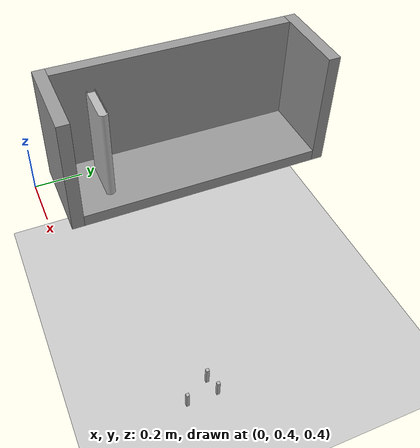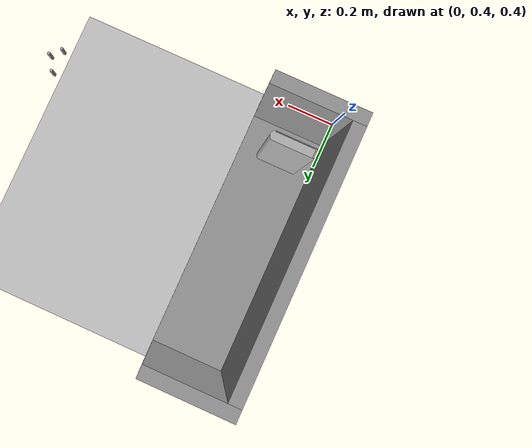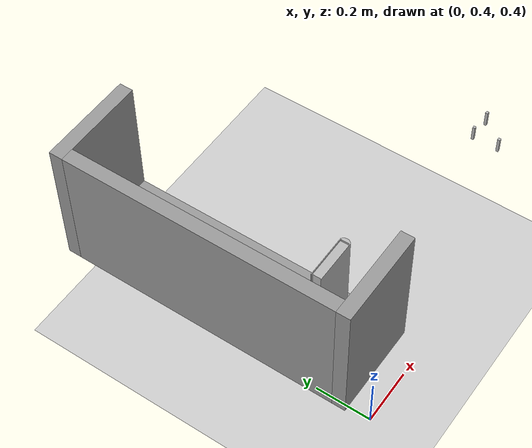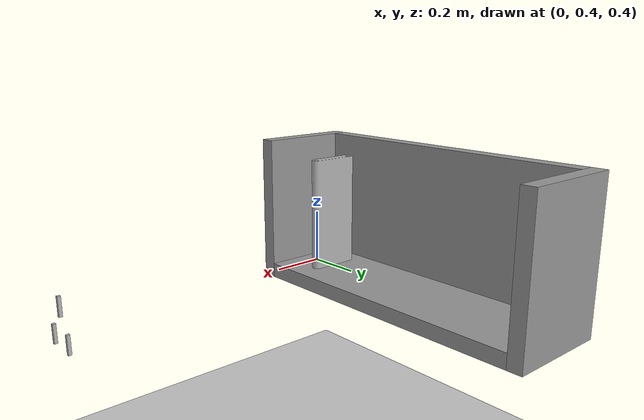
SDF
<?xml version='1.0'?>
<sdf version="1.6">
    <world name="big_bowl_spatula_v">

        <include>
            <uri>model://sun</uri>
        </include>

        <include>
            <uri>model://ground_plane</uri>
        </include>

        <include>
            <uri>model://bookshelf_</uri>
            <pose>0.000000 0.000000 0.000000 0.000000 0.0000000 0.000001</pose>
        </include>

        <include>
            <uri>model://book</uri>
            <name>book_target</name>
            <pose>0.150000 0.661000 0.475000 0.000000 0.000000 1.57080</pose>

            <plugin name="target_tf_broadcaster" filename="libtf_broadcaster_plugin.so">
              <linkName>link</linkName>
              <frameName>book_object_frame</frameName>
            </plugin>
        </include>

        <!-- Left Gripper -->
        <include>
            <uri>model://finger</uri>
            <name>left_ee</name>
            <pose>1.150000 0.661000 0.575000 0.000000 0.000000 1.57080</pose>

            <plugin name="l_force_controller" filename="libvelocity_controller_plugin.so">
              <linkName>link</linkName>
              <topicName>set_l_ee_twist</topicName>
              <gains>
                <linear>
                  <P>100.0</P>
                  <I>0.0</I>
                  <D>25.0</D>
                </linear>
                <angular>
                  <P>100.0</P>
                  <I>0.0</I>
                  <D>25.0</D>
                </angular>
              </gains>
            </plugin>

            <plugin name="l_tf_broadcaster" filename="libtf_broadcaster_plugin.so">
              <linkName>link</linkName>
              <frameName>l_gripper_tool_frame</frameName>
            </plugin>
        </include>

        <!-- Right Gripper -->
        <include>
            <uri>model://finger</uri>
            <name>right_ee</name>
            <pose>1.150000 0.600000 0.475000 0.000000 0.000000 1.57080</pose>

            <plugin name="r_force_controller" filename="libvelocity_controller_plugin.so">
              <linkName>link</linkName>
              <topicName>set_r_ee_twist</topicName>
              <gains>
                <linear>
                  <P>100.0</P>
                  <I>0.0</I>
                  <D>25.0</D>
                </linear>
                <angular>
                  <P>100.0</P>
                  <I>0.0</I>
                  <D>25.0</D>
                </angular>
              </gains>
            </plugin>

            <plugin name="r_tf_broadcaster" filename="libtf_broadcaster_plugin.so">
              <linkName>link</linkName>
              <frameName>r_gripper_tool_frame</frameName>
            </plugin>
        </include>

        <include>
            <uri>model://finger</uri>
            <name>right_ee_2</name>
            <pose>1.150000 0.7000000 0.475000 0.000000 0.000000 1.57080</pose>

            <plugin name="r_2_force_controller" filename="libvelocity_controller_plugin.so">
              <linkName>link</linkName>
              <topicName>set_r_ee_2_twist</topicName>
              <gains>
                <linear>
                  <P>100.0</P>
                  <I>0.0</I>
                  <D>25.0</D>
                </linear>
                <angular>
                  <P>100.0</P>
                  <I>0.0</I>
                  <D>25.0</D>
                </angular>
              </gains>
            </plugin>

            <plugin name="r_2_tf_broadcaster" filename="libtf_broadcaster_plugin.so">
              <linkName>link</linkName>
              <frameName>r_2_gripper_tool_frame</frameName>
            </plugin>
        </include>

        <plugin name="feature_visualization_plugin" filename="libgiskard_visualization_plugin.so"></plugin>

        <gui>
            <camera name='user_camera'>
                <pose>1.770789 1.775709 1.500612 0 0.375643 -2.675000</pose>
                <view_controller>orbit</view_controller>
            </camera>
        </gui>

    </world>
</sdf>

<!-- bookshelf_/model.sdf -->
<sdf version='1.6'>
  <model name='bookshelf_'>
    <model name='shelf'>
      <link name='link_0'>
        <pose frame=''>-0.007971 1.02332 0.68125 0 -0 0</pose>
        <inertial>
          <mass>1</mass>
          <inertia>
            <ixx>0.166667</ixx>
            <ixy>0</ixy>
            <ixz>0</ixz>
            <iyy>0.166667</iyy>
            <iyz>0</iyz>
            <izz>0.166667</izz>
          </inertia>
          <pose frame=''>0 0 0 0 -0 0</pose>
        </inertial>
        <gravity>1</gravity>
        <self_collide>0</self_collide>
        <kinematic>0</kinematic>
        <visual name='visual'>
          <pose frame=''>0 0 0 0 -0 0</pose>
          <geometry>
            <box>
              <size>0.05 1 0.5</size>
            </box>
          </geometry>
          <material>
            <lighting>1</lighting>
            <script>
              <uri>file://media/materials/scripts/gazebo.material</uri>
              <name>Gazebo/Grey</name>
            </script>
            <ambient>0.3 0.3 0.3 1</ambient>
            <diffuse>0.7 0.7 0.7 1</diffuse>
            <specular>0.01 0.01 0.01 1</specular>
            <emissive>0 0 0 1</emissive>
            <shader type='vertex'>
              <normal_map>__default__</normal_map>
            </shader>
          </material>
          <transparency>0</transparency>
          <cast_shadows>1</cast_shadows>
        </visual>
        <collision name='collision'>
          <laser_retro>0</laser_retro>
          <max_contacts>10</max_contacts>
          <pose frame=''>0 0 0 0 -0 0</pose>
          <geometry>
            <box>
              <size>0.05 1 0.5</size>
            </box>
          </geometry>
          <surface>
            <friction>
              <ode>
                <mu>1</mu>
                <mu2>1</mu2>
                <fdir1>0 0 0</fdir1>
                <slip1>0</slip1>
                <slip2>0</slip2>
              </ode>
              <torsional>
                <coefficient>1</coefficient>
                <patch_radius>0</patch_radius>
                <surface_radius>0</surface_radius>
                <use_patch_radius>1</use_patch_radius>
                <ode>
                  <slip>0</slip>
                </ode>
              </torsional>
            </friction>
            <bounce>
              <restitution_coefficient>0</restitution_coefficient>
              <threshold>1e+06</threshold>
            </bounce>
            <contact>
              <collide_without_contact>0</collide_without_contact>
              <collide_without_contact_bitmask>1</collide_without_contact_bitmask>
              <collide_bitmask>1</collide_bitmask>
              <ode>
                <soft_cfm>0</soft_cfm>
                <soft_erp>0.2</soft_erp>
                <kp>1e+13</kp>
                <kd>1</kd>
                <max_vel>0.01</max_vel>
                <min_depth>0</min_depth>
              </ode>
              <bullet>
                <split_impulse>1</split_impulse>
                <split_impulse_penetration_threshold>-0.01</split_impulse_penetration_threshold>
                <soft_cfm>0</soft_cfm>
                <soft_erp>0.2</soft_erp>
                <kp>1e+13</kp>
                <kd>1</kd>
              </bullet>
            </contact>
          </surface>
        </collision>
      </link>
      <link name='link_0_clone'>
        <pose frame=''>0.167029 1.02332 0.45625 0 -0 0</pose>
        <inertial>
          <mass>1</mass>
          <inertia>
            <ixx>0.166667</ixx>
            <ixy>0</ixy>
            <ixz>0</ixz>
            <iyy>0.166667</iyy>
            <iyz>0</iyz>
            <izz>0.166667</izz>
          </inertia>
          <pose frame=''>0 0 0 0 -0 0</pose>
        </inertial>
        <self_collide>0</self_collide>
        <kinematic>0</kinematic>
        <gravity>1</gravity>
        <visual name='visual'>
          <pose frame=''>0 0 0 0 -0 0</pose>
          <geometry>
            <box>
              <size>0.3 1 0.05</size>
            </box>
          </geometry>
          <material>
            <lighting>1</lighting>
            <script>
              <uri>file://media/materials/scripts/gazebo.material</uri>
              <name>Gazebo/Grey</name>
            </script>
            <ambient>0.3 0.3 0.3 1</ambient>
            <diffuse>0.7 0.7 0.7 1</diffuse>
            <specular>0.01 0.01 0.01 1</specular>
            <emissive>0 0 0 1</emissive>
            <shader type='vertex'>
              <normal_map>__default__</normal_map>
            </shader>
          </material>
          <transparency>0</transparency>
          <cast_shadows>1</cast_shadows>
        </visual>
        <collision name='collision'>
          <laser_retro>0</laser_retro>
          <max_contacts>10</max_contacts>
          <pose frame=''>0 0 0 0 -0 0</pose>
          <geometry>
            <box>
              <size>0.3 1 0.05</size>
            </box>
          </geometry>
          <surface>
            <friction>
              <ode>
                <mu>1</mu>
                <mu2>1</mu2>
                <fdir1>0 0 0</fdir1>
                <slip1>0</slip1>
                <slip2>0</slip2>
              </ode>
              <torsional>
                <coefficient>1</coefficient>
                <patch_radius>0</patch_radius>
                <surface_radius>0</surface_radius>
                <use_patch_radius>1</use_patch_radius>
                <ode>
                  <slip>0</slip>
                </ode>
              </torsional>
            </friction>
            <bounce>
              <restitution_coefficient>0</restitution_coefficient>
              <threshold>1e+06</threshold>
            </bounce>
            <contact>
              <collide_without_contact>0</collide_without_contact>
              <collide_without_contact_bitmask>1</collide_without_contact_bitmask>
              <collide_bitmask>1</collide_bitmask>
              <ode>
                <soft_cfm>0</soft_cfm>
                <soft_erp>0.2</soft_erp>
                <kp>1e+13</kp>
                <kd>1</kd>
                <max_vel>0.01</max_vel>
                <min_depth>0</min_depth>
              </ode>
              <bullet>
                <split_impulse>1</split_impulse>
                <split_impulse_penetration_threshold>-0.01</split_impulse_penetration_threshold>
                <soft_cfm>0</soft_cfm>
                <soft_erp>0.2</soft_erp>
                <kp>1e+13</kp>
                <kd>1</kd>
              </bullet>
            </contact>
          </surface>
        </collision>
      </link>
      <link name='link_0_clone_0'>
        <pose frame=''>0.142029 1.54832 0.68125 0 -0 0</pose>
        <inertial>
          <mass>1</mass>
          <inertia>
            <ixx>0.166667</ixx>
            <ixy>0</ixy>
            <ixz>0</ixz>
            <iyy>0.166667</iyy>
            <iyz>0</iyz>
            <izz>0.166667</izz>
          </inertia>
          <pose frame=''>0 0 0 0 -0 0</pose>
        </inertial>
        <self_collide>0</self_collide>
        <kinematic>0</kinematic>
        <gravity>1</gravity>
        <visual name='visual'>
          <pose frame=''>0 0 0 0 -0 0</pose>
          <geometry>
            <box>
              <size>0.35 0.05 0.5</size>
            </box>
          </geometry>
          <material>
            <lighting>1</lighting>
            <script>
              <uri>file://media/materials/scripts/gazebo.material</uri>
              <name>Gazebo/Grey</name>
            </script>
            <ambient>0.3 0.3 0.3 1</ambient>
            <diffuse>0.7 0.7 0.7 1</diffuse>
            <specular>0.01 0.01 0.01 1</specular>
            <emissive>0 0 0 1</emissive>
            <shader type='vertex'>
              <normal_map>__default__</normal_map>
            </shader>
          </material>
          <transparency>0</transparency>
          <cast_shadows>1</cast_shadows>
        </visual>
        <collision name='collision'>
          <laser_retro>0</laser_retro>
          <max_contacts>10</max_contacts>
          <pose frame=''>0 0 0 0 -0 0</pose>
          <geometry>
            <box>
              <size>0.35 0.05 0.5</size>
            </box>
          </geometry>
          <surface>
            <friction>
              <ode>
                <mu>1</mu>
                <mu2>1</mu2>
                <fdir1>0 0 0</fdir1>
                <slip1>0</slip1>
                <slip2>0</slip2>
              </ode>
              <torsional>
                <coefficient>1</coefficient>
                <patch_radius>0</patch_radius>
                <surface_radius>0</surface_radius>
                <use_patch_radius>1</use_patch_radius>
                <ode>
                  <slip>0</slip>
                </ode>
              </torsional>
            </friction>
            <bounce>
              <restitution_coefficient>0</restitution_coefficient>
              <threshold>1e+06</threshold>
            </bounce>
            <contact>
              <collide_without_contact>0</collide_without_contact>
              <collide_without_contact_bitmask>1</collide_without_contact_bitmask>
              <collide_bitmask>1</collide_bitmask>
              <ode>
                <soft_cfm>0</soft_cfm>
                <soft_erp>0.2</soft_erp>
                <kp>1e+13</kp>
                <kd>1</kd>
                <max_vel>0.01</max_vel>
                <min_depth>0</min_depth>
              </ode>
              <bullet>
                <split_impulse>1</split_impulse>
                <split_impulse_penetration_threshold>-0.01</split_impulse_penetration_threshold>
                <soft_cfm>0</soft_cfm>
                <soft_erp>0.2</soft_erp>
                <kp>1e+13</kp>
                <kd>1</kd>
              </bullet>
            </contact>
          </surface>
        </collision>
      </link>
      <link name='link_0_clone_0_clone'>
        <pose frame=''>0.142028 0.498323 0.68125 0 -0 0</pose>
        <inertial>
          <mass>1</mass>
          <inertia>
            <ixx>0.166667</ixx>
            <ixy>0</ixy>
            <ixz>0</ixz>
            <iyy>0.166667</iyy>
            <iyz>0</iyz>
            <izz>0.166667</izz>
          </inertia>
          <pose frame=''>0 0 0 0 -0 0</pose>
        </inertial>
        <self_collide>0</self_collide>
        <kinematic>0</kinematic>
        <gravity>1</gravity>
        <visual name='visual'>
          <pose frame=''>0 0 0 0 -0 0</pose>
          <geometry>
            <box>
              <size>0.35 0.05 0.5</size>
            </box>
          </geometry>
          <material>
            <lighting>1</lighting>
            <script>
              <uri>file://media/materials/scripts/gazebo.material</uri>
              <name>Gazebo/Grey</name>
            </script>
            <ambient>0.3 0.3 0.3 1</ambient>
            <diffuse>0.7 0.7 0.7 1</diffuse>
            <specular>0.01 0.01 0.01 1</specular>
            <emissive>0 0 0 1</emissive>
            <shader type='vertex'>
              <normal_map>__default__</normal_map>
            </shader>
          </material>
          <transparency>0</transparency>
          <cast_shadows>1</cast_shadows>
        </visual>
        <collision name='collision'>
          <laser_retro>0</laser_retro>
          <max_contacts>10</max_contacts>
          <pose frame=''>0 0 0 0 -0 0</pose>
          <geometry>
            <box>
              <size>0.35 0.05 0.5</size>
            </box>
          </geometry>
          <surface>
            <friction>
              <ode>
                <mu>1</mu>
                <mu2>1</mu2>
                <fdir1>0 0 0</fdir1>
                <slip1>0</slip1>
                <slip2>0</slip2>
              </ode>
              <torsional>
                <coefficient>1</coefficient>
                <patch_radius>0</patch_radius>
                <surface_radius>0</surface_radius>
                <use_patch_radius>1</use_patch_radius>
                <ode>
                  <slip>0</slip>
                </ode>
              </torsional>
            </friction>
            <bounce>
              <restitution_coefficient>0</restitution_coefficient>
              <threshold>1e+06</threshold>
            </bounce>
            <contact>
              <collide_without_contact>0</collide_without_contact>
              <collide_without_contact_bitmask>1</collide_without_contact_bitmask>
              <collide_bitmask>1</collide_bitmask>
              <ode>
                <soft_cfm>0</soft_cfm>
                <soft_erp>0.2</soft_erp>
                <kp>1e+13</kp>
                <kd>1</kd>
                <max_vel>0.01</max_vel>
                <min_depth>0</min_depth>
              </ode>
              <bullet>
                <split_impulse>1</split_impulse>
                <split_impulse_penetration_threshold>-0.01</split_impulse_penetration_threshold>
                <soft_cfm>0</soft_cfm>
                <soft_erp>0.2</soft_erp>
                <kp>1e+13</kp>
                <kd>1</kd>
              </bullet>
            </contact>
          </surface>
        </collision>
      </link>
      <joint name='link_0_clone_JOINT_0' type='fixed'>
        <parent>link_0_clone</parent>
        <child>link_0</child>
        <pose frame=''>0 0 0 0 -0 0</pose>
        <physics>
          <ode>
            <limit>
              <cfm>0</cfm>
              <erp>0.2</erp>
            </limit>
            <suspension>
              <cfm>0</cfm>
              <erp>0.2</erp>
            </suspension>
          </ode>
        </physics>
      </joint>
      <joint name='link_0_clone_JOINT_1' type='fixed'>
        <parent>link_0_clone</parent>
        <child>link_0_clone_0_clone</child>
        <pose frame=''>0 0 0 0 -0 0</pose>
        <physics>
          <ode>
            <limit>
              <cfm>0</cfm>
              <erp>0.2</erp>
            </limit>
            <suspension>
              <cfm>0</cfm>
              <erp>0.2</erp>
            </suspension>
          </ode>
        </physics>
      </joint>
      <joint name='link_0_clone_JOINT_2' type='fixed'>
        <parent>link_0_clone</parent>
        <child>link_0_clone_0</child>
        <pose frame=''>0 0 0 0 -0 0</pose>
        <physics>
          <ode>
            <limit>
              <cfm>0</cfm>
              <erp>0.2</erp>
            </limit>
            <suspension>
              <cfm>0</cfm>
              <erp>0.2</erp>
            </suspension>
          </ode>
        </physics>
      </joint>
      <static>1</static>
      <allow_auto_disable>1</allow_auto_disable>
      <pose frame=''>0 -2e-06 0 0 -0 0</pose>
    </model>
    <static>1</static>
    <allow_auto_disable>1</allow_auto_disable>
  </model>
</sdf>

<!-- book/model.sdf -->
<sdf version='1.6'>
  <model name='book'>
    <static>false</static>
    <pose>-0.031125 0 0.010809 1e-06 -0 0</pose>

    <link name='link'>
      <pose frame='link'>-0.031125 0 0.010809 1e-06 -0 0</pose>
      <inertial>
        <mass>1</mass>
        <pose frame='link'>0.03 0 0.18 0 -0 0</pose>
        <inertia>
          <ixx>.01495105</ixx>
          <ixy>0</ixy>
          <ixz>0</ixz>
          <iyy>0.01270166</iyy>
          <iyz>0</iyz>
          <izz>0.00247143</izz>
        </inertia>
      </inertial>
      <collision name='collision'>
        <geometry>
          <mesh>
            <uri>model://book/book.stl</uri>
          </mesh>
        </geometry>
        <pose frame=''>0.26 0 -0.32 0 -0 0</pose>
        <surface>
          <friction>
            <ode>
              <mu>1</mu>
              <mu2>1</mu2>
            </ode>
          </friction>
        </surface>
      </collision>
      <visual name='visual'>
        <geometry>
          <mesh>
            <uri>model://book/book.stl</uri>
          </mesh>
        </geometry>
        <pose frame=''>0.26 0 -0.32 0 -0 0</pose>
      </visual>
    </link>
  </model>
</sdf>

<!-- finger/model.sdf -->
<sdf version='1.6'>
    <model name='gripper'>
        <static>false</static>
        <allow_auto_disable>false</allow_auto_disable>

        <pose>0 0 0 0 0 0</pose>

        <link name='link'>
            <pose>0 0 0 0 0 0</pose>

            <gravity>false</gravity>

            <collision name='collision'>
              <geometry>
                <box>
                  <size>0.01 0.01 0.06</size>
                </box>
              </geometry>
              <surface>
                <friction>
                  <ode>
                    <mu>999</mu>
                    <mu2>999</mu2>
                  </ode>
                </friction>
              </surface>
            </collision>

            <visual name='visual'>
                <geometry>
                  <box>
                    <size>0.01 0.01 0.06</size>
                  </box>
                </geometry>
            </visual>

        </link>
    </model>
</sdf>
